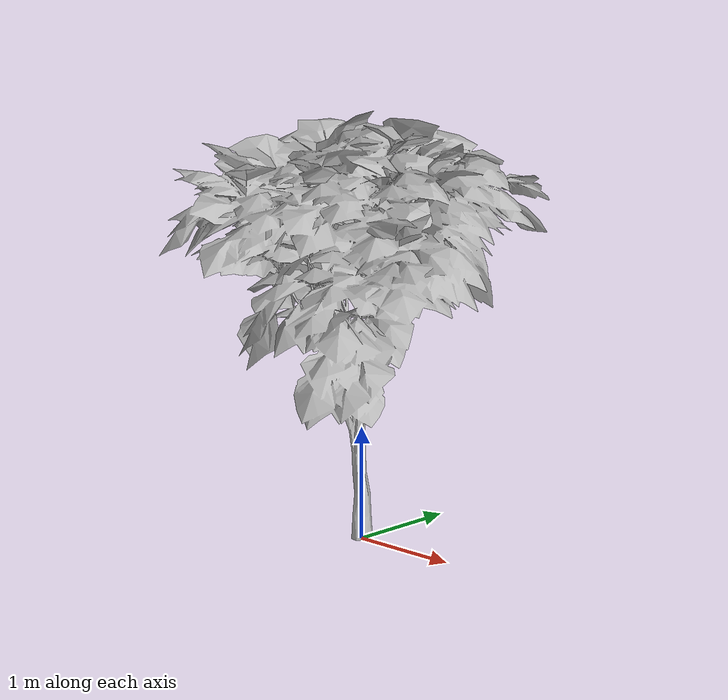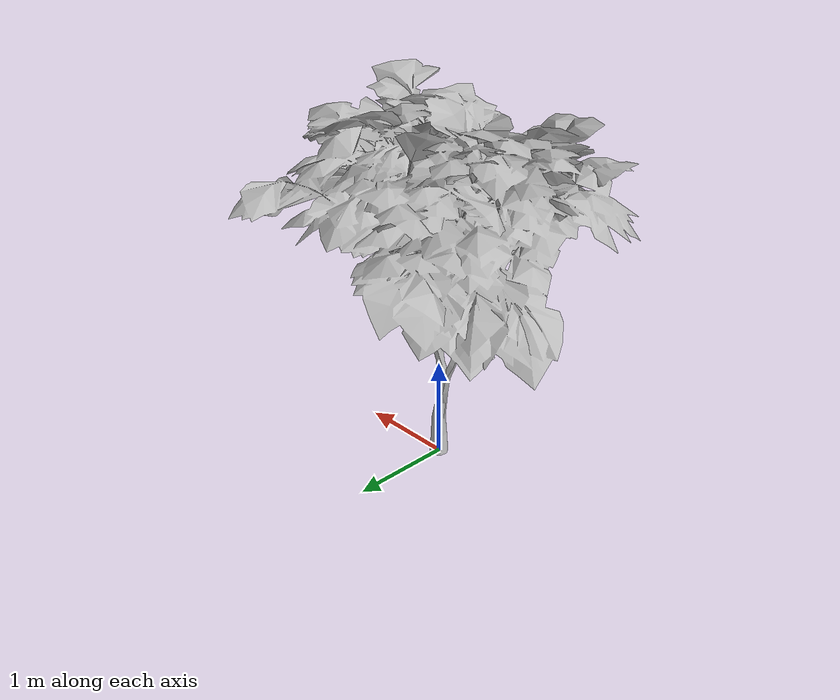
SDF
<?xml version="1.0"?>
<sdf version="1.4">
  <model name='tree'>
      <static>1</static>
      <link name='link_tree'>
        <pose>0 -0 0.0 1.5708 -0 0</pose>
      <collision name='collision'>
        <laser_retro>0</laser_retro>
        <max_contacts>10</max_contacts>
        <pose frame=''>0 0 0 0 -0 0</pose>
        <geometry>
          <mesh>
            <uri>model://tree/meshes/tree.dae</uri>
          </mesh>
        </geometry>
        <surface>
          <friction>
            <ode>
              <mu>1</mu>
              <mu2>1</mu2>
              <fdir1>0 0 0</fdir1>
              <slip1>0</slip1>
              <slip2>0</slip2>
            </ode>
            <torsional>
              <coefficient>1</coefficient>
              <patch_radius>0</patch_radius>
              <surface_radius>0</surface_radius>
              <use_patch_radius>1</use_patch_radius>
              <ode>
                <slip>0</slip>
              </ode>
            </torsional>
          </friction>
          <bounce>
            <restitution_coefficient>0</restitution_coefficient>
            <threshold>1e+06</threshold>
          </bounce>
          <contact>
            <collide_without_contact>0</collide_without_contact>
            <collide_without_contact_bitmask>1</collide_without_contact_bitmask>
            <collide_bitmask>1</collide_bitmask>
            <ode>
              <soft_cfm>0</soft_cfm>
              <soft_erp>0.2</soft_erp>
              <kp>1e+13</kp>
              <kd>1</kd>
              <max_vel>0.01</max_vel>
              <min_depth>0</min_depth>
            </ode>
            <bullet>
              <split_impulse>1</split_impulse>
              <split_impulse_penetration_threshold>-0.01</split_impulse_penetration_threshold>
              <soft_cfm>0</soft_cfm>
              <soft_erp>0.2</soft_erp>
              <kp>1e+13</kp>
              <kd>1</kd>
            </bullet>
          </contact>
        </surface>
      </collision>
        <visual name='visual'>
          <cast_shadows>0</cast_shadows>
          <transparency>0</transparency>
          <geometry>
            <mesh>
              <uri>model://tree/meshes/tree.dae</uri>
              <scale>1 1 1</scale>
            </mesh>
          </geometry>
        </visual>
        <velocity_decay>
          <linear>0</linear>
          <angular>0</angular>
        </velocity_decay>
        <self_collide>0</self_collide>
        <kinematic>0</kinematic>
        <gravity>1</gravity>
      </link>
  </model>
</sdf>
